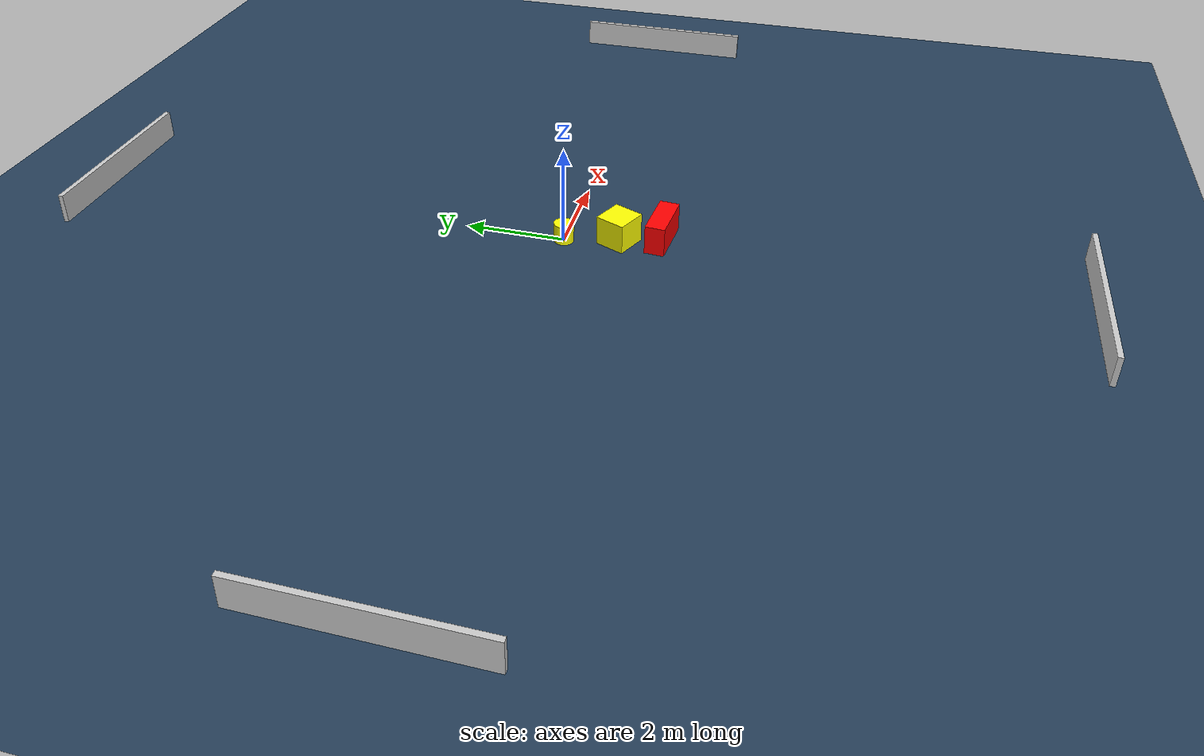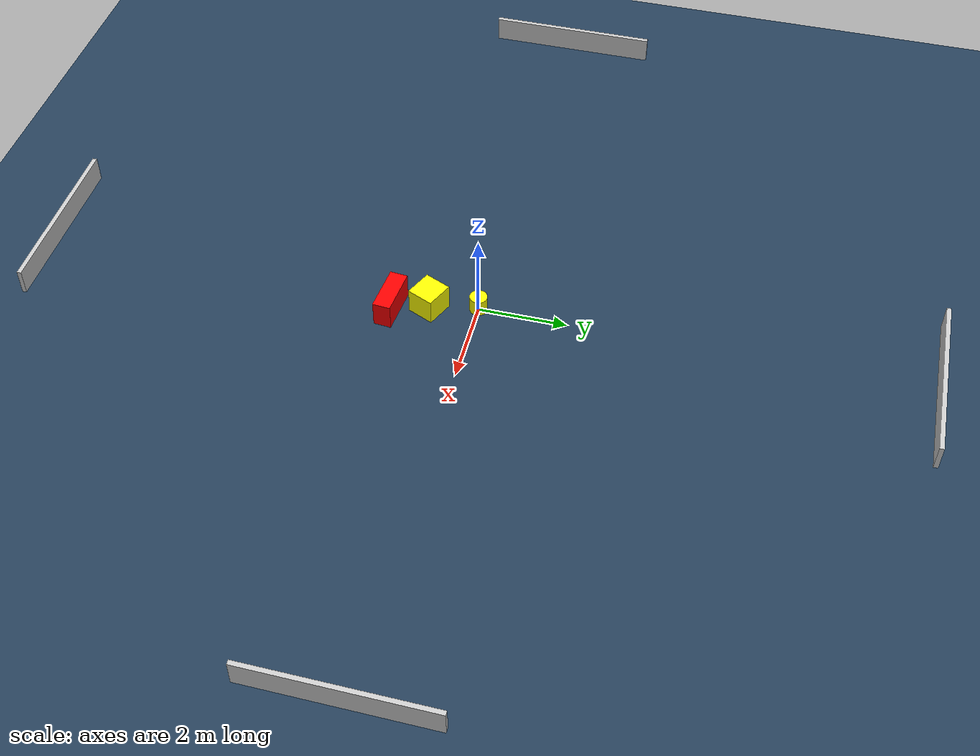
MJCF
<?xml version="1.0" ?>
<mujoco model="generated_environment">
  <option timestep="0.01" integrator="RK4" cone="elliptic"/>
  <default>
    <geom density="1"/>
  </default>
  <asset>
    <texture builtin="gradient" height="3072" name="skybox" rgb1="0.3 0.5 0.7" rgb2="0 0 0" type="skybox" width="512"/>
    <texture builtin="checker" height="300" name="groundplane" rgb1="0.2 0.3 0.4" rgb2="0.1 0.2 0.3" type="2d" width="300"/>
    <material name="groundplane" reflectance="0.2" texrepeat="5 5" texture="groundplane"/>
  </asset>
  <worldbody>
    <light dir="0 0 -1" directional="true" pos="0 0 1.5"/>
    <geom condim="3" friction="0.5 0.005 0.001" material="groundplane" name="floor" pos="0 0 0" size="0 0 0.05" type="plane"/>
    <body name="walls">
      <geom name="wall_1" condim="4" pos="-10.0 0.0 0.3" rgba="0.800000011920929 0.800000011920929 0.800000011920929 1.0" size="0.05 2.0 0.3" type="box"/>
      <geom name="wall_2" condim="4" pos="10.0 0.0 0.3" rgba="0.800000011920929 0.800000011920929 0.800000011920929 1.0" size="0.05 2.0 0.3" type="box"/>
      <geom name="wall_3" condim="4" pos="0.0 -10.0 0.3" rgba="0.800000011920929 0.800000011920929 0.800000011920929 1.0" size="2.0 0.05 0.3" type="box"/>
      <geom name="wall_4" condim="4" pos="0.0 10.0 0.3" rgba="0.800000011920929 0.800000011920929 0.800000011920929 1.0" size="2.0 0.05 0.3" type="box"/>
    </body>
    <body name="robot">
      <joint name="joint_x" type="slide" pos="0 0 0" axis="1 0 0"/>
      <joint name="joint_y" type="slide" pos="0 0 0" axis="0 1 0"/>
      <geom name="robot" type="cylinder" pos="0.0 0.0 0.2" size="0.2 0.2 0.0" mass="5.0" friction="1.0 0.005 0.0001" condim="4" rgba="1.0 1.0 0.0 1.0"/>
    </body>
    <body name="obstacle_1_movable">
      <geom name="obstacle_1_movable" condim="4" pos="0.23533530326267701 -1.0655684941084467 0.3" euler="0 0 156.14067534399965" friction="0.0 0.005 0.001" rgba="1.0 1.0 0.0 1.0" size="0.3219374599326426 0.31113167833790856 0.3" type="box" mass="0.1"/>
      <joint type="free"/>
    </body>
    <body name="obstacle_2_static">
      <geom name="obstacle_2_static" condim="4" pos="0.47236699312629643 -1.8793238714542662 0.3" euler="0 0 175.06032601510321" friction="0.0 0.005 0.001" rgba="1.0 0.0 0.0 1.0" size="0.5319527162305975 0.20008313340946704 0.3" type="box"/>
    </body>
  </worldbody>
  <actuator>
    <motor name="actuator_x" joint="joint_x" gear="1" ctrlrange="-1 1"/>
    <motor name="actuator_y" joint="joint_y" gear="1" ctrlrange="-1 1"/>
  </actuator>
</mujoco>
